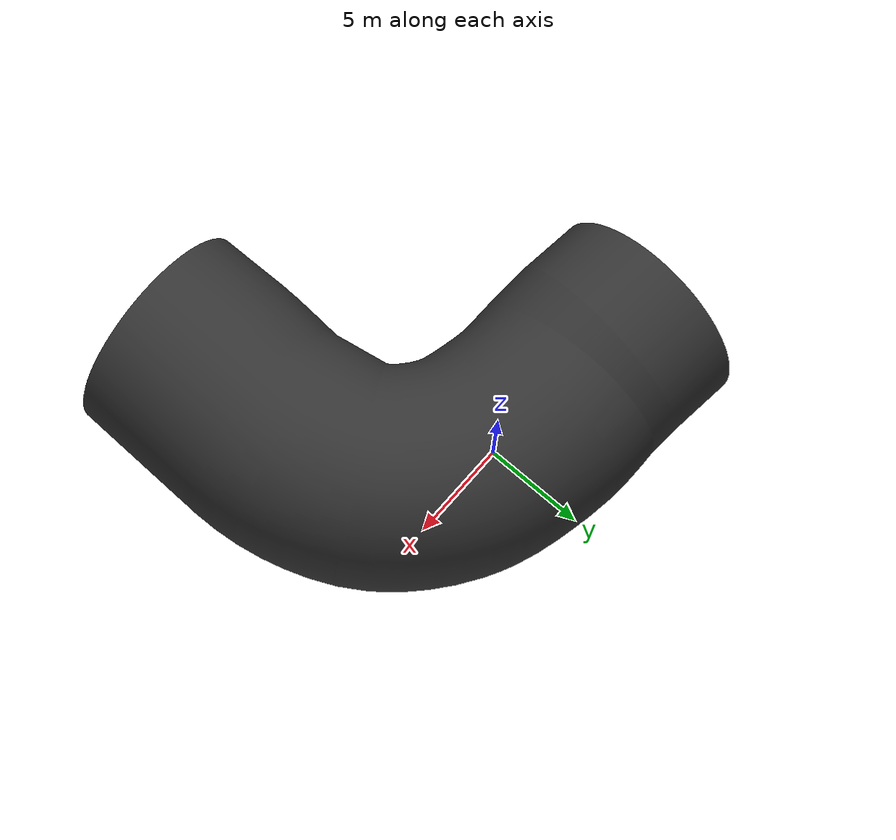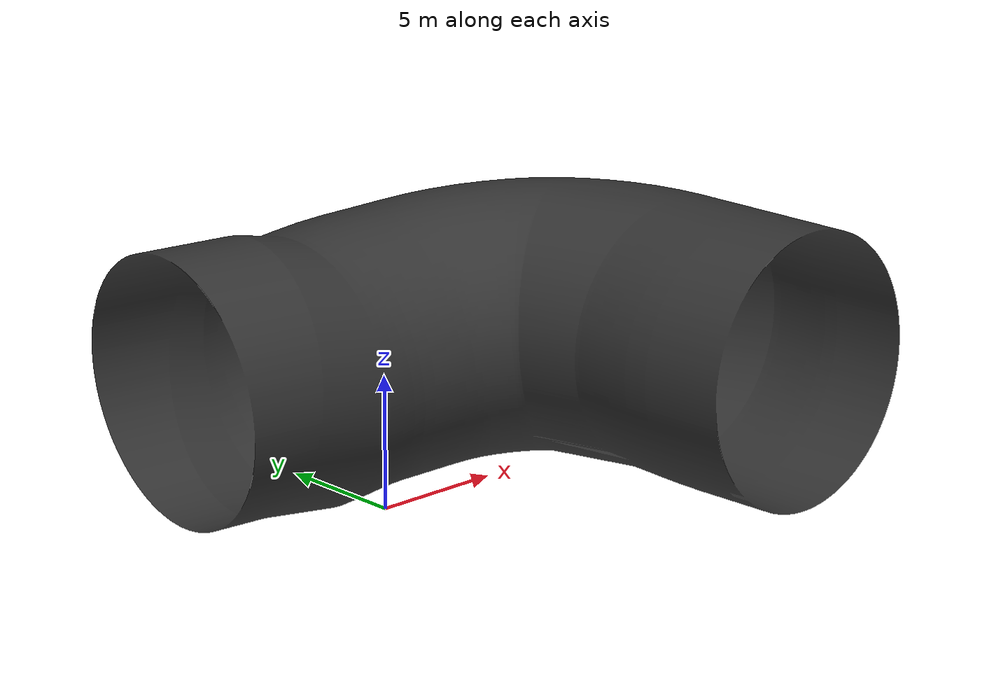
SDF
<?xml version="1.0" ?>
<sdf version="1.8">
  <model name="curved_tunnel">
    <static>true</static>

    <link name="tunnel">

      <!-- Collision -->
      <collision name="collision">
        <geometry>
          <mesh>
            <uri>meshes/curved_tunnel.stl</uri>
          </mesh>
        </geometry>
      </collision>

      <!-- Visual -->
      <visual name="visual">
        <geometry>
          <mesh>
            <uri>meshes/curved_tunnel.stl</uri>
          </mesh>
        </geometry>
        <material>
            <ambient>0.2 0.2 0.2 1</ambient>
            <diffuse>0.2 0.2 0.2 1</diffuse>
        </material>
      </visual>

    </link>
  </model>
</sdf>
